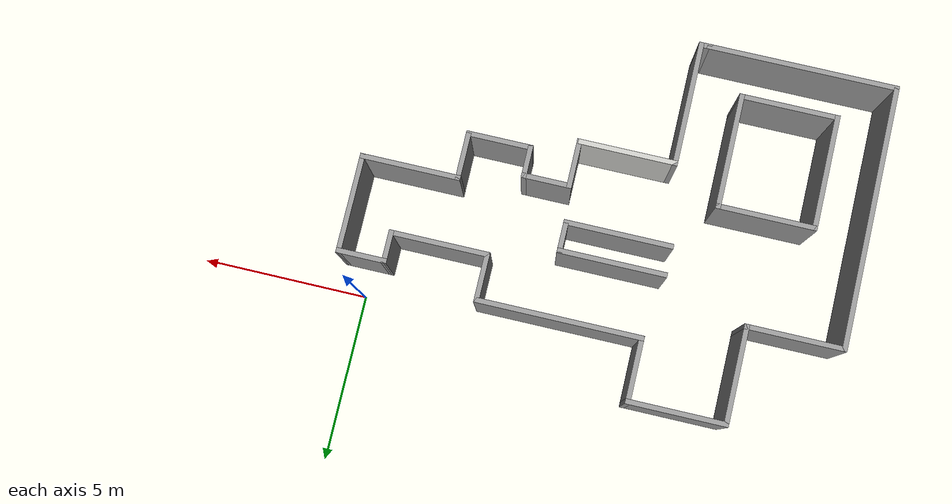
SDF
<sdf version='1.6'>
  <world name='default'>
    <light name='sun' type='directional'>
      <cast_shadows>1</cast_shadows>
      <pose frame=''>0 0 10 0 -0 0</pose>
      <diffuse>0.8 0.8 0.8 1</diffuse>
      <specular>0.2 0.2 0.2 1</specular>
      <attenuation>
        <range>1000</range>
        <constant>0.9</constant>
        <linear>0.01</linear>
        <quadratic>0.001</quadratic>
      </attenuation>
      <direction>-0.5 0.1 -0.9</direction>
    </light>
    <gravity>0 0 -9.8</gravity>
    <magnetic_field>6e-06 2.3e-05 -4.2e-05</magnetic_field>
    <atmosphere type='adiabatic'/>
    <physics name='default_physics' default='0' type='ode'>
      <max_step_size>0.001</max_step_size>
      <real_time_factor>1</real_time_factor>
      <real_time_update_rate>1000</real_time_update_rate>
    </physics>
    <scene>
      <ambient>0.4 0.4 0.4 1</ambient>
      <background>0.7 0.7 0.7 1</background>
      <shadows>1</shadows>
    </scene>
    <spherical_coordinates>
      <surface_model>EARTH_WGS84</surface_model>
      <latitude_deg>0</latitude_deg>
      <longitude_deg>0</longitude_deg>
      <elevation>0</elevation>
      <heading_deg>0</heading_deg>
    </spherical_coordinates>
  <model name='test1'>
    <pose frame=''>-6.64429 -3.93518 0 0 -0 0</pose>
    <link name='Wall_20'>
      <collision name='Wall_20_Collision'>
        <geometry>
          <box>
            <size>5 0.15 2.5</size>
          </box>
        </geometry>
        <pose frame=''>0 0 1.25 0 -0 0</pose>
      </collision>
      <visual name='Wall_20_Visual'>
        <pose frame=''>0 0 1.25 0 -0 0</pose>
        <geometry>
          <box>
            <size>5 0.15 2.5</size>
          </box>
        </geometry>
        <material>
          <script>
            <uri>file://media/materials/scripts/gazebo.material</uri>
            <name>Gazebo/Grey</name>
          </script>
          <ambient>1 1 1 1</ambient>
        </material>
      </visual>
      <pose frame=''>0.75 3.50002 0 0 -0 0</pose>
    </link>
    <link name='Wall_21'>
      <collision name='Wall_21_Collision'>
        <geometry>
          <box>
            <size>1.5 0.15 2.5</size>
          </box>
        </geometry>
        <pose frame=''>0 0 1.25 0 -0 0</pose>
      </collision>
      <visual name='Wall_21_Visual'>
        <pose frame=''>0 0 1.25 0 -0 0</pose>
        <geometry>
          <box>
            <size>1.5 0.15 2.5</size>
          </box>
        </geometry>
        <material>
          <script>
            <uri>file://media/materials/scripts/gazebo.material</uri>
            <name>Gazebo/Grey</name>
          </script>
          <ambient>1 1 1 1</ambient>
        </material>
      </visual>
      <pose frame=''>3.175 2.82502 0 0 0 -1.5708</pose>
    </link>
    <link name='Wall_22'>
      <collision name='Wall_22_Collision'>
        <geometry>
          <box>
            <size>3 0.15 2.5</size>
          </box>
        </geometry>
        <pose frame=''>0 0 1.25 0 -0 0</pose>
      </collision>
      <visual name='Wall_22_Visual'>
        <pose frame=''>0 0 1.25 0 -0 0</pose>
        <geometry>
          <box>
            <size>3 0.15 2.5</size>
          </box>
        </geometry>
        <material>
          <script>
            <uri>file://media/materials/scripts/gazebo.material</uri>
            <name>Gazebo/Grey</name>
          </script>
          <ambient>1 1 1 1</ambient>
        </material>
      </visual>
      <pose frame=''>4.6 2.15002 0 0 -0 0</pose>
    </link>
    <link name='Wall_23'>
      <collision name='Wall_23_Collision'>
        <geometry>
          <box>
            <size>1 0.15 2.5</size>
          </box>
        </geometry>
        <pose frame=''>0 0 1.25 0 -0 0</pose>
      </collision>
      <visual name='Wall_23_Visual'>
        <pose frame=''>0 0 1.25 0 -0 0</pose>
        <geometry>
          <box>
            <size>1 0.15 2.5</size>
          </box>
        </geometry>
        <material>
          <script>
            <uri>file://media/materials/scripts/gazebo.material</uri>
            <name>Gazebo/Grey</name>
          </script>
          <ambient>1 1 1 1</ambient>
        </material>
      </visual>
      <pose frame=''>6.025 2.57502 0 0 -0 1.5708</pose>
    </link>
    <link name='Wall_24'>
      <collision name='Wall_24_Collision'>
        <geometry>
          <box>
            <size>1.5 0.15 2.5</size>
          </box>
        </geometry>
        <pose frame=''>0 0 1.25 0 -0 0</pose>
      </collision>
      <visual name='Wall_24_Visual'>
        <pose frame=''>0 0 1.25 0 -0 0</pose>
        <geometry>
          <box>
            <size>1.5 0.15 2.5</size>
          </box>
        </geometry>
        <material>
          <script>
            <uri>file://media/materials/scripts/gazebo.material</uri>
            <name>Gazebo/Grey</name>
          </script>
          <ambient>1 1 1 1</ambient>
        </material>
      </visual>
      <pose frame=''>6.7 3.00002 0 0 -0 0</pose>
    </link>
    <link name='Wall_25'>
      <collision name='Wall_25_Collision'>
        <geometry>
          <box>
            <size>3 0.15 2.5</size>
          </box>
        </geometry>
        <pose frame=''>0 0 1.25 0 -0 0</pose>
      </collision>
      <visual name='Wall_25_Visual'>
        <pose frame=''>0 0 1.25 0 -0 0</pose>
        <geometry>
          <box>
            <size>3 0.15 2.5</size>
          </box>
        </geometry>
        <material>
          <script>
            <uri>file://media/materials/scripts/gazebo.material</uri>
            <name>Gazebo/Grey</name>
          </script>
          <ambient>1 1 1 1</ambient>
        </material>
      </visual>
      <pose frame=''>7.375 1.57502 0 0 0 -1.5708</pose>
    </link>
    <link name='Wall_26'>
      <collision name='Wall_26_Collision'>
        <geometry>
          <box>
            <size>3 0.15 2.5</size>
          </box>
        </geometry>
        <pose frame=''>0 0 1.25 0 -0 0</pose>
      </collision>
      <visual name='Wall_26_Visual'>
        <pose frame=''>0 0 1.25 0 -0 0</pose>
        <geometry>
          <box>
            <size>3 0.15 2.5</size>
          </box>
        </geometry>
        <material>
          <script>
            <uri>file://media/materials/scripts/gazebo.material</uri>
            <name>Gazebo/Grey</name>
          </script>
          <ambient>1 1 1 1</ambient>
        </material>
      </visual>
      <pose frame=''>5.95 0.150024 0 0 -0 3.14159</pose>
    </link>
    <link name='Wall_30'>
      <collision name='Wall_30_Collision'>
        <geometry>
          <box>
            <size>1.5 0.15 2.5</size>
          </box>
        </geometry>
        <pose frame=''>0 0 1.25 0 -0 0</pose>
      </collision>
      <visual name='Wall_30_Visual'>
        <pose frame=''>0 0 1.25 0 -0 0</pose>
        <geometry>
          <box>
            <size>1.5 0.15 2.5</size>
          </box>
        </geometry>
        <material>
          <script>
            <uri>file://media/materials/scripts/gazebo.material</uri>
            <name>Gazebo/Grey</name>
          </script>
          <ambient>1 1 1 1</ambient>
        </material>
      </visual>
      <pose frame=''>4.525 -0.524976 0 0 0 -1.5708</pose>
    </link>
    <link name='Wall_31'>
      <collision name='Wall_31_Collision'>
        <geometry>
          <box>
            <size>2 0.15 2.5</size>
          </box>
        </geometry>
        <pose frame=''>0 0 1.25 0 -0 0</pose>
      </collision>
      <visual name='Wall_31_Visual'>
        <pose frame=''>0 0 1.25 0 -0 0</pose>
        <geometry>
          <box>
            <size>2 0.15 2.5</size>
          </box>
        </geometry>
        <material>
          <script>
            <uri>file://media/materials/scripts/gazebo.material</uri>
            <name>Gazebo/Grey</name>
          </script>
          <ambient>1 1 1 1</ambient>
        </material>
      </visual>
      <pose frame=''>3.6 -1.19998 0 0 -0 3.14159</pose>
    </link>
    <link name='Wall_32'>
      <collision name='Wall_32_Collision'>
        <geometry>
          <box>
            <size>1 0.15 2.5</size>
          </box>
        </geometry>
        <pose frame=''>0 0 1.25 0 -0 0</pose>
      </collision>
      <visual name='Wall_32_Visual'>
        <pose frame=''>0 0 1.25 0 -0 0</pose>
        <geometry>
          <box>
            <size>1 0.15 2.5</size>
          </box>
        </geometry>
        <material>
          <script>
            <uri>file://media/materials/scripts/gazebo.material</uri>
            <name>Gazebo/Grey</name>
          </script>
          <ambient>1 1 1 1</ambient>
        </material>
      </visual>
      <pose frame=''>2.675 -0.774976 0 0 -0 1.5708</pose>
    </link>
    <link name='Wall_33'>
      <collision name='Wall_33_Collision'>
        <geometry>
          <box>
            <size>1.5 0.15 2.5</size>
          </box>
        </geometry>
        <pose frame=''>0 0 1.25 0 -0 0</pose>
      </collision>
      <visual name='Wall_33_Visual'>
        <pose frame=''>0 0 1.25 0 -0 0</pose>
        <geometry>
          <box>
            <size>1.5 0.15 2.5</size>
          </box>
        </geometry>
        <material>
          <script>
            <uri>file://media/materials/scripts/gazebo.material</uri>
            <name>Gazebo/Grey</name>
          </script>
          <ambient>1 1 1 1</ambient>
        </material>
      </visual>
      <pose frame=''>2 -0.349976 0 0 -0 3.14159</pose>
    </link>
    <link name='Wall_34'>
      <collision name='Wall_34_Collision'>
        <geometry>
          <box>
            <size>1.5 0.15 2.5</size>
          </box>
        </geometry>
        <pose frame=''>0 0 1.25 0 -0 0</pose>
      </collision>
      <visual name='Wall_34_Visual'>
        <pose frame=''>0 0 1.25 0 -0 0</pose>
        <geometry>
          <box>
            <size>1.5 0.15 2.5</size>
          </box>
        </geometry>
        <material>
          <script>
            <uri>file://media/materials/scripts/gazebo.material</uri>
            <name>Gazebo/Grey</name>
          </script>
          <ambient>1 1 1 1</ambient>
        </material>
      </visual>
      <pose frame=''>1.325 -1.02498 0 0 0 -1.5708</pose>
    </link>
    <link name='Wall_37'>
      <collision name='Wall_37_Collision'>
        <geometry>
          <box>
            <size>3 0.15 2.5</size>
          </box>
        </geometry>
        <pose frame=''>0 0 1.25 0 -0 0</pose>
      </collision>
      <visual name='Wall_37_Visual'>
        <pose frame=''>0 0 1.25 0 -0 0</pose>
        <geometry>
          <box>
            <size>3 0.15 2.5</size>
          </box>
        </geometry>
        <material>
          <script>
            <uri>file://media/materials/scripts/gazebo.material</uri>
            <name>Gazebo/CeilingTiled</name>
          </script>
          <ambient>1 1 1 1</ambient>
        </material>
      </visual>
      <pose frame=''>-0.099853 -1.6999 0 0 -0 3.14154</pose>
    </link>
    <link name='Wall_53'>
      <collision name='Wall_53_Collision'>
        <geometry>
          <box>
            <size>2 0.15 2.5</size>
          </box>
        </geometry>
        <pose frame=''>0 0 1.25 0 -0 0</pose>
      </collision>
      <visual name='Wall_53_Visual'>
        <pose frame=''>0 0 1.25 0 -0 0</pose>
        <geometry>
          <box>
            <size>2 0.15 2.5</size>
          </box>
        </geometry>
        <material>
          <script>
            <uri>file://media/materials/scripts/gazebo.material</uri>
            <name>Gazebo/Grey</name>
          </script>
          <ambient>1 1 1 1</ambient>
        </material>
      </visual>
      <pose frame=''>-1.675 4.42502 0 0 -0 1.5708</pose>
    </link>
    <link name='Wall_54'>
      <collision name='Wall_54_Collision'>
        <geometry>
          <box>
            <size>3 0.15 2.5</size>
          </box>
        </geometry>
        <pose frame=''>0 0 1.25 0 -0 0</pose>
      </collision>
      <visual name='Wall_54_Visual'>
        <pose frame=''>0 0 1.25 0 -0 0</pose>
        <geometry>
          <box>
            <size>3 0.15 2.5</size>
          </box>
        </geometry>
        <material>
          <script>
            <uri>file://media/materials/scripts/gazebo.material</uri>
            <name>Gazebo/Grey</name>
          </script>
          <ambient>1 1 1 1</ambient>
        </material>
      </visual>
      <pose frame=''>-3.1 5.35002 0 0 -0 3.14159</pose>
    </link>
    <link name='Wall_55'>
      <collision name='Wall_55_Collision'>
        <geometry>
          <box>
            <size>3 0.15 2.5</size>
          </box>
        </geometry>
        <pose frame=''>0 0 1.25 0 -0 0</pose>
      </collision>
      <visual name='Wall_55_Visual'>
        <pose frame=''>0 0 1.25 0 -0 0</pose>
        <geometry>
          <box>
            <size>3 0.15 2.5</size>
          </box>
        </geometry>
        <material>
          <script>
            <uri>file://media/materials/scripts/gazebo.material</uri>
            <name>Gazebo/Grey</name>
          </script>
          <ambient>1 1 1 1</ambient>
        </material>
      </visual>
      <pose frame=''>-4.525 3.92502 0 0 0 -1.5708</pose>
    </link>
    <link name='Wall_56'>
      <collision name='Wall_56_Collision'>
        <geometry>
          <box>
            <size>3 0.15 2.5</size>
          </box>
        </geometry>
        <pose frame=''>0 0 1.25 0 -0 0</pose>
      </collision>
      <visual name='Wall_56_Visual'>
        <pose frame=''>0 0 1.25 0 -0 0</pose>
        <geometry>
          <box>
            <size>3 0.15 2.5</size>
          </box>
        </geometry>
        <material>
          <script>
            <uri>file://media/materials/scripts/gazebo.material</uri>
            <name>Gazebo/Grey</name>
          </script>
          <ambient>1 1 1 1</ambient>
        </material>
      </visual>
      <pose frame=''>-5.95 2.50002 0 0 -0 3.14159</pose>
    </link>
    <link name='Wall_57'>
      <collision name='Wall_57_Collision'>
        <geometry>
          <box>
            <size>8 0.15 2.5</size>
          </box>
        </geometry>
        <pose frame=''>0 0 1.25 0 -0 0</pose>
      </collision>
      <visual name='Wall_57_Visual'>
        <pose frame=''>0 0 1.25 0 -0 0</pose>
        <geometry>
          <box>
            <size>8 0.15 2.5</size>
          </box>
        </geometry>
        <material>
          <script>
            <uri>file://media/materials/scripts/gazebo.material</uri>
            <name>Gazebo/Grey</name>
          </script>
          <ambient>1 1 1 1</ambient>
        </material>
      </visual>
      <pose frame=''>-7.375 -1.42498 0 0 0 -1.5708</pose>
    </link>
    <link name='Wall_58'>
      <collision name='Wall_58_Collision'>
        <geometry>
          <box>
            <size>5.75 0.15 2.5</size>
          </box>
        </geometry>
        <pose frame=''>0 0 1.25 0 -0 0</pose>
      </collision>
      <visual name='Wall_58_Visual'>
        <pose frame=''>0 0 1.25 0 -0 0</pose>
        <geometry>
          <box>
            <size>5.75 0.15 2.5</size>
          </box>
        </geometry>
        <material>
          <script>
            <uri>file://media/materials/scripts/gazebo.material</uri>
            <name>Gazebo/Grey</name>
          </script>
          <ambient>1 1 1 1</ambient>
        </material>
      </visual>
      <pose frame=''>-4.575 -5.34998 0 0 -0 0</pose>
    </link>
    <link name='Wall_62'>
      <collision name='Wall_62_Collision'>
        <geometry>
          <box>
            <size>3.8 0.15 2.5</size>
          </box>
        </geometry>
        <pose frame=''>0 0 1.25 0 -0 0</pose>
      </collision>
      <visual name='Wall_62_Visual'>
        <pose frame=''>0 0 1.25 0 -0 0</pose>
        <geometry>
          <box>
            <size>3.8 0.15 2.5</size>
          </box>
        </geometry>
        <material>
          <script>
            <uri>file://media/materials/scripts/gazebo.material</uri>
            <name>Gazebo/Grey</name>
          </script>
          <ambient>1 1 1 1</ambient>
        </material>
      </visual>
      <pose frame=''>-1.5247 -3.52482 0 0 0 -1.5708</pose>
    </link>
    <link name='Wall_64'>
      <collision name='Wall_64_Collision'>
        <geometry>
          <box>
            <size>0.400295 0.15 2.5</size>
          </box>
        </geometry>
        <pose frame=''>0 0 1.25 0 -0 0</pose>
      </collision>
      <visual name='Wall_64_Visual'>
        <pose frame=''>0 0 1.25 0 -0 0</pose>
        <geometry>
          <box>
            <size>0.400295 0.15 2.5</size>
          </box>
        </geometry>
        <material>
          <script>
            <uri>file://media/materials/scripts/gazebo.material</uri>
            <name>Gazebo/Grey</name>
          </script>
          <ambient>1 1 1 1</ambient>
        </material>
      </visual>
      <pose frame=''>-1.64985 -5.3499 0 0 0 -3.14095</pose>
    </link>
    <link name='Wall_66'>
      <collision name='Wall_66_Collision'>
        <geometry>
          <box>
            <size>3 0.15 2.5</size>
          </box>
        </geometry>
        <pose frame=''>0 0 1.25 0 -0 0</pose>
      </collision>
      <visual name='Wall_66_Visual'>
        <pose frame=''>0 0 1.25 0 -0 0</pose>
        <geometry>
          <box>
            <size>3 0.15 2.5</size>
          </box>
        </geometry>
        <material>
          <script>
            <uri>file://media/materials/scripts/gazebo.material</uri>
            <name>Gazebo/Grey</name>
          </script>
          <ambient>1 1 1 1</ambient>
        </material>
      </visual>
      <pose frame=''>-4.43058 -4.08813 0 0 -0 3.14159</pose>
    </link>
    <link name='Wall_67'>
      <collision name='Wall_67_Collision'>
        <geometry>
          <box>
            <size>3.5 0.15 2.5</size>
          </box>
        </geometry>
        <pose frame=''>0 0 1.25 0 -0 0</pose>
      </collision>
      <visual name='Wall_67_Visual'>
        <pose frame=''>0 0 1.25 0 -0 0</pose>
        <geometry>
          <box>
            <size>3.5 0.15 2.5</size>
          </box>
        </geometry>
        <material>
          <script>
            <uri>file://media/materials/scripts/gazebo.material</uri>
            <name>Gazebo/Grey</name>
          </script>
          <ambient>1 1 1 1</ambient>
        </material>
      </visual>
      <pose frame=''>-5.85558 -2.41313 0 0 -0 1.5708</pose>
    </link>
    <link name='Wall_68'>
      <collision name='Wall_68_Collision'>
        <geometry>
          <box>
            <size>3 0.15 2.5</size>
          </box>
        </geometry>
        <pose frame=''>0 0 1.25 0 -0 0</pose>
      </collision>
      <visual name='Wall_68_Visual'>
        <pose frame=''>0 0 1.25 0 -0 0</pose>
        <geometry>
          <box>
            <size>3 0.15 2.5</size>
          </box>
        </geometry>
        <material>
          <script>
            <uri>file://media/materials/scripts/gazebo.material</uri>
            <name>Gazebo/Grey</name>
          </script>
          <ambient>1 1 1 1</ambient>
        </material>
      </visual>
      <pose frame=''>-4.43058 -0.738126 0 0 -0 0</pose>
    </link>
    <link name='Wall_69'>
      <collision name='Wall_69_Collision'>
        <geometry>
          <box>
            <size>3.5 0.15 2.5</size>
          </box>
        </geometry>
        <pose frame=''>0 0 1.25 0 -0 0</pose>
      </collision>
      <visual name='Wall_69_Visual'>
        <pose frame=''>0 0 1.25 0 -0 0</pose>
        <geometry>
          <box>
            <size>3.5 0.15 2.5</size>
          </box>
        </geometry>
        <material>
          <script>
            <uri>file://media/materials/scripts/gazebo.material</uri>
            <name>Gazebo/Grey</name>
          </script>
          <ambient>1 1 1 1</ambient>
        </material>
      </visual>
      <pose frame=''>-3.00558 -2.41313 0 0 0 -1.5708</pose>
    </link>
    <link name='Wall_71'>
      <collision name='Wall_71_Collision'>
        <geometry>
          <box>
            <size>3.25 0.15 2.5</size>
          </box>
        </geometry>
        <pose frame=''>0 0 1.25 0 -0 0</pose>
      </collision>
      <visual name='Wall_71_Visual'>
        <pose frame=''>0 0 1.25 0 -0 0</pose>
        <geometry>
          <box>
            <size>3.25 0.15 2.5</size>
          </box>
        </geometry>
        <material>
          <script>
            <uri>file://media/materials/scripts/gazebo.material</uri>
            <name>Gazebo/Grey</name>
          </script>
          <ambient>1 1 1 1</ambient>
        </material>
      </visual>
      <pose frame=''>-0.3757 1.56939 0 0 -0 0</pose>
    </link>
    <link name='Wall_72'>
      <collision name='Wall_72_Collision'>
        <geometry>
          <box>
            <size>1 0.15 2.5</size>
          </box>
        </geometry>
        <pose frame=''>0 0 1.25 0 -0 0</pose>
      </collision>
      <visual name='Wall_72_Visual'>
        <pose frame=''>0 0 1.25 0 -0 0</pose>
        <geometry>
          <box>
            <size>1 0.15 2.5</size>
          </box>
        </geometry>
        <material>
          <script>
            <uri>file://media/materials/scripts/gazebo.material</uri>
            <name>Gazebo/Grey</name>
          </script>
          <ambient>1 1 1 1</ambient>
        </material>
      </visual>
      <pose frame=''>1.1743 1.14439 0 0 0 -1.5708</pose>
    </link>
    <link name='Wall_73'>
      <collision name='Wall_73_Collision'>
        <geometry>
          <box>
            <size>3.25 0.15 2.5</size>
          </box>
        </geometry>
        <pose frame=''>0 0 1.25 0 -0 0</pose>
      </collision>
      <visual name='Wall_73_Visual'>
        <pose frame=''>0 0 1.25 0 -0 0</pose>
        <geometry>
          <box>
            <size>3.25 0.15 2.5</size>
          </box>
        </geometry>
        <material>
          <script>
            <uri>file://media/materials/scripts/gazebo.material</uri>
            <name>Gazebo/Grey</name>
          </script>
          <ambient>1 1 1 1</ambient>
        </material>
      </visual>
      <pose frame=''>-0.3757 0.719387 0 0 -0 3.14159</pose>
    </link>
    <static>1</static>
  </model>
  </world>
</sdf>
